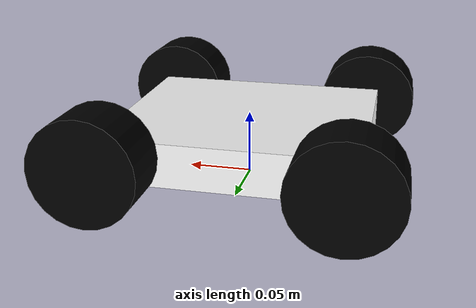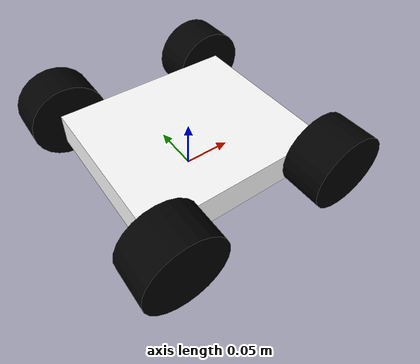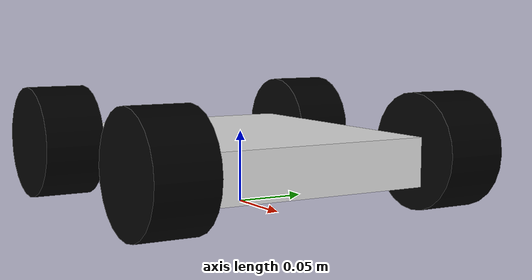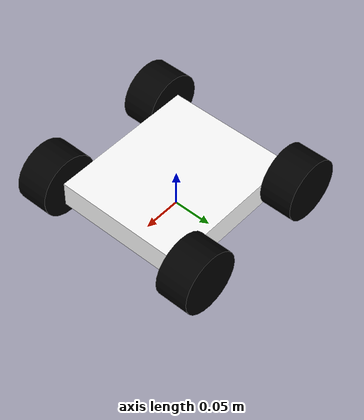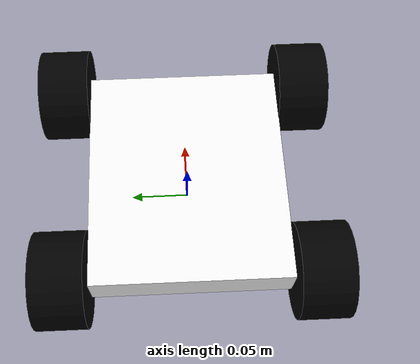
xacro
<?xml version="1.0"?>
<robot xmlns:xacro="http://www.ros.org/wiki/xacro">

    <xacro:include filename="common_properties.xacro"/>
    <xacro:include filename="inertia_properties.xacro"/>
    <xacro:include filename="gazebo_control.xacro"/>

    <!-- BASE LINK -->
    <link name="base_link"></link>

    <!-- BASE_FOOTPRINT LINK (ref point for localization) -->
    <joint name="base_footprint_joint" type="fixed">
        <parent link="base_link"/>
        <child link="base_footprint"/>
        <origin xyz="0 0 0" rpy="0 0 0"/>
    </joint>

    <link name="base_footprint"></link>

    <!-- CHASSIS LINK -->
    <joint name="chassis_joint" type="fixed">
        <parent link="base_link"/>
        <child link="chassis"/>
        <origin xyz="0 0 ${chassis_body_height/2}"/>
    </joint>
    <link name="chassis">
        <visual>
            <origin xyz="0 0 ${chassis_body_height/2}"/>
            <geometry>
                <box size="${chassis_length} ${chassis_width} ${chassis_body_height}"/>
            </geometry>
            <material name="white"/>
        </visual>
        <collision>
            <origin xyz="0 0 ${chassis_body_height/2}"/>
            <geometry>
                <box size="${chassis_length} ${chassis_width} ${chassis_body_height}"/>
            </geometry>
        </collision>
        <xacro:cuboid_inertia mass="0.6" width="${chassis_width}" height="${chassis_body_height}" depth="${chassis_length}">
            <origin xyz="0 0 ${chassis_body_height/2}"/>
        </xacro:cuboid_inertia>
    </link>

    <!-- WHEELS -->
    <xacro:macro name="wheel" params="prefix x_reflect y_reflect">
        <link name="${prefix}_wheel">
            <visual>
                <geometry>
                    <cylinder radius="${wheel_radius}" length="${wheel_thickness}"/>
                </geometry>
                <material name="black"/>
            </visual>
            <collision>
                <geometry>
                    <cylinder radius="${wheel_radius}" length="${wheel_thickness}"/>
                </geometry>
                <surface>
                    <friction>
                        <ode>
                            <mu>1.0</mu>
                            <mu2>1.0</mu2>
                        </ode>
                    </friction>
                </surface>
            </collision>
            <xacro:cylinder_inertia mass="0.1" radius="${wheel_radius}" height="${wheel_thickness}">
                <origin xyz="0 0 0" rpy="0 0 0"/>
            </xacro:cylinder_inertia>
        </link>

        <joint name="${prefix}_wheel_joint" type="continuous">
            <parent link="base_link"/>
            <child link="${prefix}_wheel"/>
            <origin xyz="${wheel_offset_x * x_reflect} ${wheel_offset_y * y_reflect} ${wheel_offset_z}" rpy="${-pi/2} 0 0"/>
            <axis xyz="0 0 1"/>

            <dynamics damping="${wheel_joint_damping}" friction="${wheel_joint_friction}"/>
        </joint>
    </xacro:macro>

    <xacro:wheel prefix="front_left"  x_reflect="1"  y_reflect="1" />
    <xacro:wheel prefix="front_right" x_reflect="1"  y_reflect="-1" />
    <xacro:wheel prefix="back_left"   x_reflect="-1" y_reflect="1" />
    <xacro:wheel prefix="back_right"  x_reflect="-1" y_reflect="-1" />

</robot>

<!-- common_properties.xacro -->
<robot xmlns:xacro="http://www.ros.org/wiki/xacro">

    <!-- Geometrics -->
    <xacro:property name="chassis_length" value="0.194"/>
    <xacro:property name="chassis_width"  value="0.168"/>
    <xacro:property name="chassis_height" value="0.100"/>
    <xacro:property name="chassis_body_height" value="0.0337"/>

    <xacro:property name="wheel_radius" value="0.040"/>
    <xacro:property name="wheel_thickness" value="0.0425"/>

    <!-- Offsets -->
    <xacro:property name="wheel_offset_x" value="0.088"/>
    <xacro:property name="wheel_offset_y" value="0.105"/>
    <xacro:property name="wheel_offset_z" value="0.040"/>

    <!-- Controls -->
    <xacro:property name="wheel_joint_damping" value="0.1"/>
    <xacro:property name="wheel_joint_friction" value="0.05"/>
    <xacro:property name="max_wheel_velocity" value="1.0"/>
    <xacro:property name="max_wheel_acceleration" value="1.0"/>

    <!-- Materials -->
    <material name="white"> <color rgba="1 1 1 1"/> </material>
    <material name="black"> <color rgba="0 0 0 1"/> </material>
    <material name="red">   <color rgba="1 0 0 1"/> </material>

</robot>

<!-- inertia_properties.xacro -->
<robot xmlns:xacro="http://www.ros.org/wiki/xacro">

    <!-- Cuboid -->
    <xacro:macro name="cuboid_inertia" params="mass width height depth *origin">
        <xacro:property name="h" value="${height*height}"/>
        <xacro:property name="w" value="${width*width}"/>
        <xacro:property name="d" value="${depth*depth}"/>
        <xacro:property name="m" value="${1/12*mass}"/>
        <inertial>
                <xacro:insert_block name="origin"/>
                <mass value="${mass}" />
                <inertia ixx="${m*(h+d)}" ixy="0.0" ixz="0.0"
                    iyy="${m*(w+d)}" iyz="0.0"
                    izz="${m*(w+h)}" />
        </inertial>
    </xacro:macro>

    <!-- Cylinder -->
    <xacro:macro name="cylinder_inertia" params="mass radius height *origin">
        <xacro:property name="r" value="${radius*radius}"/>
        <xacro:property name="h" value="${height*height}"/>
        <xacro:property name="m" value="${1/12*mass}"/>
        <inertial>
                <xacro:insert_block name="origin"/>
                <mass value="${mass}" />
                <inertia ixx="${m*(3*r+h)}" ixy="0.0" ixz="0.0"
                    iyy="${m*(3*r+h)}" iyz="0.0"
                    izz="${1/2*mass*(r)}" />
        </inertial>
    </xacro:macro>

</robot>
